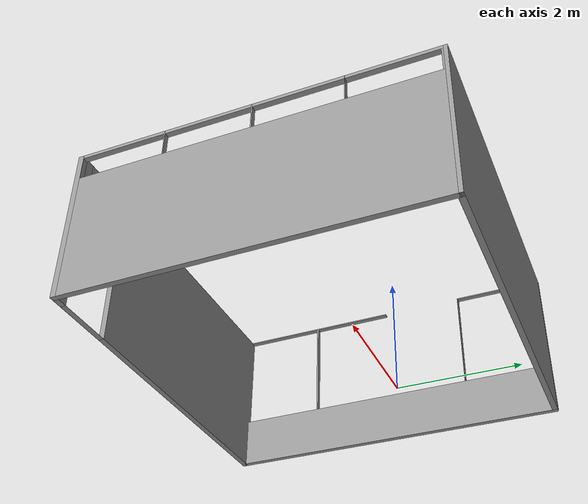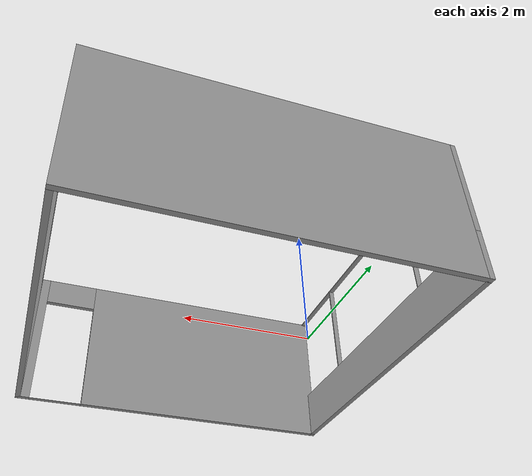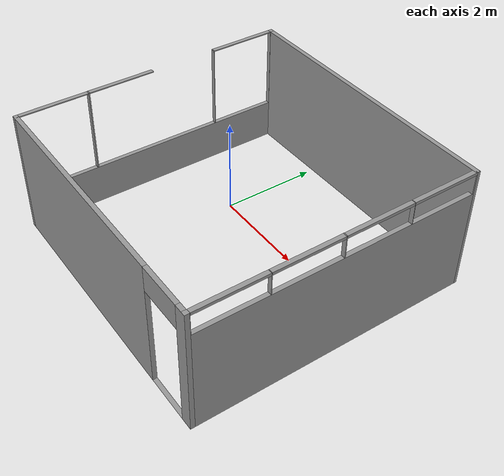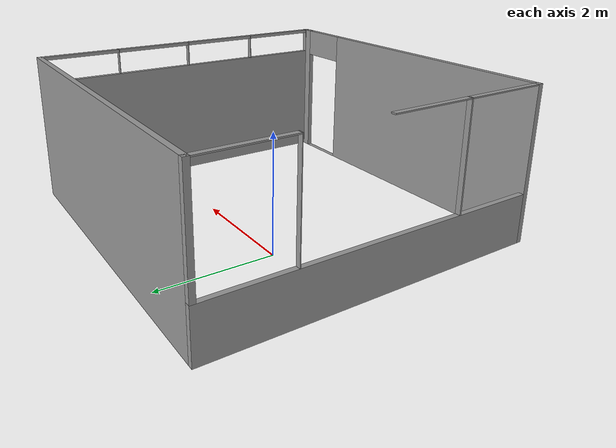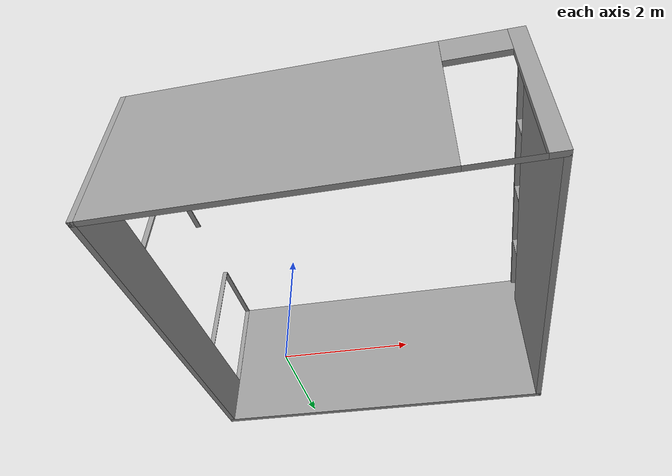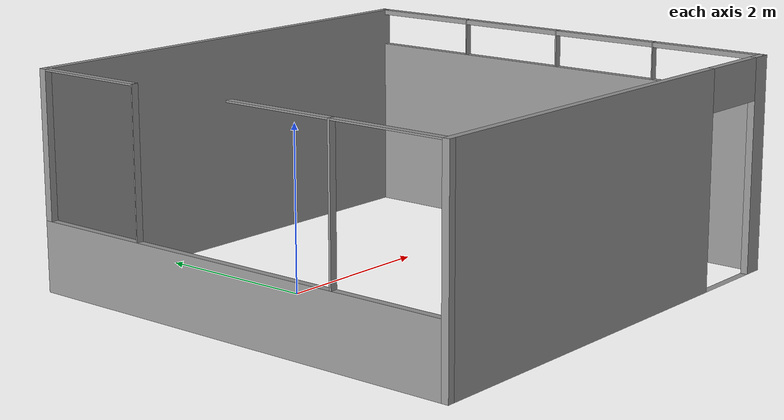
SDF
<?xml version='1.0'?>
<sdf version='1.6'>
  <model name='B75_Room'>
    <pose frame=''>1.23 -0.68 0 0 -0 0</pose>
    <link name='Wall_0'>
      <pose frame=''>-2.94 0 0 0 -0 1.5708</pose>
      <visual name='Wall_0_Visual_0'>
        <pose frame=''>-2.87782 0 1.305 0 -0 0</pose>
        <geometry>
          <box>
            <size>0.084362 0.09 2.61</size>
          </box>
        </geometry>
        <material>
          <script>
            <uri>file://media/materials/scripts/gazebo.material</uri>
            <name>Gazebo/Grey</name>
          </script>
          <ambient>1 1 1 1</ambient>
        </material>
        <meta>
          <layer>0</layer>
        </meta>
      </visual>
      <collision name='Wall_0_Collision_0'>
        <geometry>
          <box>
            <size>0.084362 0.09 2.61</size>
          </box>
        </geometry>
        <pose frame=''>-2.87782 0 1.305 0 -0 0</pose>
      </collision>
      <visual name='Wall_0_Visual_1'>
        <pose frame=''>0.042181 0 0.425 0 -0 0</pose>
        <geometry>
          <box>
            <size>5.75564 0.09 0.85</size>
          </box>
        </geometry>
        <material>
          <script>
            <uri>file://media/materials/scripts/gazebo.material</uri>
            <name>Gazebo/Grey</name>
          </script>
          <ambient>1 1 1 1</ambient>
        </material>
        <meta>
          <layer>0</layer>
        </meta>
      </visual>
      <collision name='Wall_0_Collision_1'>
        <geometry>
          <box>
            <size>5.75564 0.09 0.85</size>
          </box>
        </geometry>
        <pose frame=''>0.042181 0 0.425 0 -0 0</pose>
      </collision>
      <visual name='Wall_0_Visual_2'>
        <pose frame=''>-1.41237 0 1.73 0 -0 0</pose>
        <geometry>
          <box>
            <size>0.026548 0.09 1.76</size>
          </box>
        </geometry>
        <material>
          <script>
            <uri>file://media/materials/scripts/gazebo.material</uri>
            <name>Gazebo/Grey</name>
          </script>
          <ambient>1 1 1 1</ambient>
        </material>
        <meta>
          <layer>0</layer>
        </meta>
      </visual>
      <collision name='Wall_0_Collision_2'>
        <geometry>
          <box>
            <size>0.026548 0.09 1.76</size>
          </box>
        </geometry>
        <pose frame=''>-1.41237 0 1.73 0 -0 0</pose>
      </collision>
      <visual name='Wall_0_Visual_3'>
        <pose frame=''>1.41154 0 1.73 0 -0 0</pose>
        <geometry>
          <box>
            <size>0.012383 0.09 1.76</size>
          </box>
        </geometry>
        <material>
          <script>
            <uri>file://media/materials/scripts/gazebo.material</uri>
            <name>Gazebo/Grey</name>
          </script>
          <ambient>1 1 1 1</ambient>
        </material>
        <meta>
          <layer>0</layer>
        </meta>
      </visual>
      <collision name='Wall_0_Collision_3'>
        <geometry>
          <box>
            <size>0.012383 0.09 1.76</size>
          </box>
        </geometry>
        <pose frame=''>1.41154 0 1.73 0 -0 0</pose>
      </collision>
      <visual name='Wall_0_Visual_4'>
        <pose frame=''>2.87387 0 1.73 0 -0 0</pose>
        <geometry>
          <box>
            <size>0.092266 0.09 1.76</size>
          </box>
        </geometry>
        <material>
          <script>
            <uri>file://media/materials/scripts/gazebo.material</uri>
            <name>Gazebo/Grey</name>
          </script>
          <ambient>1 1 1 1</ambient>
        </material>
        <meta>
          <layer>0</layer>
        </meta>
      </visual>
      <collision name='Wall_0_Collision_4'>
        <geometry>
          <box>
            <size>0.092266 0.09 1.76</size>
          </box>
        </geometry>
        <pose frame=''>2.87387 0 1.73 0 -0 0</pose>
      </collision>
      <visual name='Wall_0_Visual_5'>
        <pose frame=''>-2.13064 0 2.6 0 -0 0</pose>
        <geometry>
          <box>
            <size>1.41 0.09 0.02</size>
          </box>
        </geometry>
        <material>
          <script>
            <uri>file://media/materials/scripts/gazebo.material</uri>
            <name>Gazebo/Grey</name>
          </script>
          <ambient>1 1 1 1</ambient>
        </material>
        <meta>
          <layer>0</layer>
        </meta>
      </visual>
      <collision name='Wall_0_Collision_5'>
        <geometry>
          <box>
            <size>1.41 0.09 0.02</size>
          </box>
        </geometry>
        <pose frame=''>-2.13064 0 2.6 0 -0 0</pose>
      </collision>
      <visual name='Wall_0_Visual_6'>
        <pose frame=''>-0.701869 0 2.6 0 -0 0</pose>
        <geometry>
          <box>
            <size>1.39444 0.09 0.02</size>
          </box>
        </geometry>
        <material>
          <script>
            <uri>file://media/materials/scripts/gazebo.material</uri>
            <name>Gazebo/Grey</name>
          </script>
          <ambient>1 1 1 1</ambient>
        </material>
        <meta>
          <layer>0</layer>
        </meta>
      </visual>
      <collision name='Wall_0_Collision_6'>
        <geometry>
          <box>
            <size>1.39444 0.09 0.02</size>
          </box>
        </geometry>
        <pose frame=''>-0.701869 0 2.6 0 -0 0</pose>
      </collision>
      <visual name='Wall_0_Visual_7'>
        <pose frame=''>2.12273 0 2.6 0 -0 0</pose>
        <geometry>
          <box>
            <size>1.41 0.09 0.02</size>
          </box>
        </geometry>
        <material>
          <script>
            <uri>file://media/materials/scripts/gazebo.material</uri>
            <name>Gazebo/Grey</name>
          </script>
          <ambient>1 1 1 1</ambient>
        </material>
        <meta>
          <layer>0</layer>
        </meta>
      </visual>
      <collision name='Wall_0_Collision_7'>
        <geometry>
          <box>
            <size>1.41 0.09 0.02</size>
          </box>
        </geometry>
        <pose frame=''>2.12273 0 2.6 0 -0 0</pose>
      </collision>
    </link>
    <link name='Wall_2'>
      <collision name='Wall_2_Collision'>
        <geometry>
          <box>
            <size>5.97 0.09 2.61</size>
          </box>
        </geometry>
        <pose frame=''>0 0 1.305 0 -0 0</pose>
      </collision>
      <visual name='Wall_2_Visual'>
        <pose frame=''>0 0 1.305 0 -0 0</pose>
        <geometry>
          <box>
            <size>5.97 0.09 2.61</size>
          </box>
        </geometry>
        <material>
          <script>
            <uri>file://media/materials/scripts/gazebo.material</uri>
            <name>Gazebo/Grey</name>
          </script>
          <ambient>1 1 1 1</ambient>
        </material>
        <meta>
          <layer>0</layer>
        </meta>
      </visual>
      <pose frame=''>-0 2.875 0 0 -0 0</pose>
    </link>
    <link name='Wall_4'>
      <pose frame=''>2.94 0 0 0 -0 -1.5708</pose>
      <visual name='Wall_4_Visual_0'>
        <pose frame=''>-2.88914 0 1.305 0 -0 0</pose>
        <geometry>
          <box>
            <size>0.061715 0.09 2.61</size>
          </box>
        </geometry>
        <material>
          <script>
            <uri>file://media/materials/scripts/gazebo.material</uri>
            <name>Gazebo/Grey</name>
          </script>
          <ambient>1 1 1 1</ambient>
        </material>
        <meta>
          <layer>0</layer>
        </meta>
      </visual>
      <collision name='Wall_4_Collision_0'>
        <geometry>
          <box>
            <size>0.061715 0.09 2.61</size>
          </box>
        </geometry>
        <pose frame=''>-2.88914 0 1.305 0 -0 0</pose>
      </collision>
      <visual name='Wall_4_Visual_1'>
        <pose frame=''>0.030858 0 1.075 0 -0 0</pose>
        <geometry>
          <box>
            <size>5.77829 0.09 2.15</size>
          </box>
        </geometry>
        <material>
          <script>
            <uri>file://media/materials/scripts/gazebo.material</uri>
            <name>Gazebo/Grey</name>
          </script>
          <ambient>1 1 1 1</ambient>
        </material>
        <meta>
          <layer>0</layer>
        </meta>
      </visual>
      <collision name='Wall_4_Collision_1'>
        <geometry>
          <box>
            <size>5.77829 0.09 2.15</size>
          </box>
        </geometry>
        <pose frame=''>0.030858 0 1.075 0 -0 0</pose>
      </collision>
      <visual name='Wall_4_Visual_2'>
        <pose frame=''>-1.44317 0 2.38 0 -0 0</pose>
        <geometry>
          <box>
            <size>0.010235 0.09 0.46</size>
          </box>
        </geometry>
        <material>
          <script>
            <uri>file://media/materials/scripts/gazebo.material</uri>
            <name>Gazebo/Grey</name>
          </script>
          <ambient>1 1 1 1</ambient>
        </material>
        <meta>
          <layer>0</layer>
        </meta>
      </visual>
      <collision name='Wall_4_Collision_2'>
        <geometry>
          <box>
            <size>0.010235 0.09 0.46</size>
          </box>
        </geometry>
        <pose frame=''>-1.44317 0 2.38 0 -0 0</pose>
      </collision>
      <visual name='Wall_4_Visual_3'>
        <pose frame=''>-0.018549 0 2.38 0 -0 0</pose>
        <geometry>
          <box>
            <size>0.019002 0.09 0.46</size>
          </box>
        </geometry>
        <material>
          <script>
            <uri>file://media/materials/scripts/gazebo.material</uri>
            <name>Gazebo/Grey</name>
          </script>
          <ambient>1 1 1 1</ambient>
        </material>
        <meta>
          <layer>0</layer>
        </meta>
      </visual>
      <collision name='Wall_4_Collision_3'>
        <geometry>
          <box>
            <size>0.019002 0.09 0.46</size>
          </box>
        </geometry>
        <pose frame=''>-0.018549 0 2.38 0 -0 0</pose>
      </collision>
      <visual name='Wall_4_Visual_4'>
        <pose frame=''>1.40747 0 2.38 0 -0 0</pose>
        <geometry>
          <box>
            <size>0.013027 0.09 0.46</size>
          </box>
        </geometry>
        <material>
          <script>
            <uri>file://media/materials/scripts/gazebo.material</uri>
            <name>Gazebo/Grey</name>
          </script>
          <ambient>1 1 1 1</ambient>
        </material>
        <meta>
          <layer>0</layer>
        </meta>
      </visual>
      <collision name='Wall_4_Collision_4'>
        <geometry>
          <box>
            <size>0.013027 0.09 0.46</size>
          </box>
        </geometry>
        <pose frame=''>1.40747 0 2.38 0 -0 0</pose>
      </collision>
      <visual name='Wall_4_Visual_5'>
        <pose frame=''>2.87199 0 2.38 0 -0 0</pose>
        <geometry>
          <box>
            <size>0.096021 0.09 0.46</size>
          </box>
        </geometry>
        <material>
          <script>
            <uri>file://media/materials/scripts/gazebo.material</uri>
            <name>Gazebo/Grey</name>
          </script>
          <ambient>1 1 1 1</ambient>
        </material>
        <meta>
          <layer>0</layer>
        </meta>
      </visual>
      <collision name='Wall_4_Collision_5'>
        <geometry>
          <box>
            <size>0.096021 0.09 0.46</size>
          </box>
        </geometry>
        <pose frame=''>2.87199 0 2.38 0 -0 0</pose>
      </collision>
      <visual name='Wall_4_Visual_6'>
        <pose frame=''>-2.15328 0 2.58 0 -0 0</pose>
        <geometry>
          <box>
            <size>1.41 0.09 0.06</size>
          </box>
        </geometry>
        <material>
          <script>
            <uri>file://media/materials/scripts/gazebo.material</uri>
            <name>Gazebo/Grey</name>
          </script>
          <ambient>1 1 1 1</ambient>
        </material>
        <meta>
          <layer>0</layer>
        </meta>
      </visual>
      <collision name='Wall_4_Collision_6'>
        <geometry>
          <box>
            <size>1.41 0.09 0.06</size>
          </box>
        </geometry>
        <pose frame=''>-2.15328 0 2.58 0 -0 0</pose>
      </collision>
      <visual name='Wall_4_Visual_7'>
        <pose frame=''>-0.73305 0 2.58 0 -0 0</pose>
        <geometry>
          <box>
            <size>1.41 0.09 0.06</size>
          </box>
        </geometry>
        <material>
          <script>
            <uri>file://media/materials/scripts/gazebo.material</uri>
            <name>Gazebo/Grey</name>
          </script>
          <ambient>1 1 1 1</ambient>
        </material>
        <meta>
          <layer>0</layer>
        </meta>
      </visual>
      <collision name='Wall_4_Collision_7'>
        <geometry>
          <box>
            <size>1.41 0.09 0.06</size>
          </box>
        </geometry>
        <pose frame=''>-0.73305 0 2.58 0 -0 0</pose>
      </collision>
      <visual name='Wall_4_Visual_8'>
        <pose frame=''>0.695952 0 2.58 0 -0 0</pose>
        <geometry>
          <box>
            <size>1.41 0.09 0.06</size>
          </box>
        </geometry>
        <material>
          <script>
            <uri>file://media/materials/scripts/gazebo.material</uri>
            <name>Gazebo/Grey</name>
          </script>
          <ambient>1 1 1 1</ambient>
        </material>
        <meta>
          <layer>0</layer>
        </meta>
      </visual>
      <collision name='Wall_4_Collision_8'>
        <geometry>
          <box>
            <size>1.41 0.09 0.06</size>
          </box>
        </geometry>
        <pose frame=''>0.695952 0 2.58 0 -0 0</pose>
      </collision>
      <visual name='Wall_4_Visual_9'>
        <pose frame=''>2.11898 0 2.58 0 -0 0</pose>
        <geometry>
          <box>
            <size>1.41 0.09 0.06</size>
          </box>
        </geometry>
        <material>
          <script>
            <uri>file://media/materials/scripts/gazebo.material</uri>
            <name>Gazebo/Grey</name>
          </script>
          <ambient>1 1 1 1</ambient>
        </material>
        <meta>
          <layer>0</layer>
        </meta>
      </visual>
      <collision name='Wall_4_Collision_9'>
        <geometry>
          <box>
            <size>1.41 0.09 0.06</size>
          </box>
        </geometry>
        <pose frame=''>2.11898 0 2.58 0 -0 0</pose>
      </collision>
    </link>
    <link name='Wall_6'>
      <pose frame=''>-0 -2.875 0 0 -0 3.14159</pose>
      <visual name='Wall_6_Visual_0'>
        <pose frame=''>-2.86065 0 1.305 0 -0 0</pose>
        <geometry>
          <box>
            <size>0.248701 0.09 2.61</size>
          </box>
        </geometry>
        <material>
          <script>
            <uri>file://media/materials/scripts/gazebo.material</uri>
            <name>Gazebo/Grey</name>
          </script>
          <ambient>1 1 1 1</ambient>
        </material>
        <meta>
          <layer>0</layer>
        </meta>
      </visual>
      <collision name='Wall_6_Collision_0'>
        <geometry>
          <box>
            <size>0.248701 0.09 2.61</size>
          </box>
        </geometry>
        <pose frame=''>-2.86065 0 1.305 0 -0 0</pose>
      </collision>
      <visual name='Wall_6_Visual_1'>
        <pose frame=''>0.594351 0 1.305 0 -0 0</pose>
        <geometry>
          <box>
            <size>4.7813 0.09 2.61</size>
          </box>
        </geometry>
        <material>
          <script>
            <uri>file://media/materials/scripts/gazebo.material</uri>
            <name>Gazebo/Grey</name>
          </script>
          <ambient>1 1 1 1</ambient>
        </material>
        <meta>
          <layer>0</layer>
        </meta>
      </visual>
      <collision name='Wall_6_Collision_1'>
        <geometry>
          <box>
            <size>4.7813 0.09 2.61</size>
          </box>
        </geometry>
        <pose frame=''>0.594351 0 1.305 0 -0 0</pose>
      </collision>
      <visual name='Wall_6_Visual_2'>
        <pose frame=''>-2.2663 0 0 0 -0 0</pose>
        <geometry>
          <box>
            <size>0.94 0.09 0</size>
          </box>
        </geometry>
        <material>
          <script>
            <uri>file://media/materials/scripts/gazebo.material</uri>
            <name>Gazebo/Grey</name>
          </script>
          <ambient>1 1 1 1</ambient>
        </material>
        <meta>
          <layer>0</layer>
        </meta>
      </visual>
      <collision name='Wall_6_Collision_2'>
        <geometry>
          <box>
            <size>0.94 0.09 0</size>
          </box>
        </geometry>
        <pose frame=''>-2.2663 0 0 0 -0 0</pose>
      </collision>
      <visual name='Wall_6_Visual_3'>
        <pose frame=''>-2.2663 0 2.355 0 -0 0</pose>
        <geometry>
          <box>
            <size>0.94 0.09 0.51</size>
          </box>
        </geometry>
        <material>
          <script>
            <uri>file://media/materials/scripts/gazebo.material</uri>
            <name>Gazebo/Grey</name>
          </script>
          <ambient>1 1 1 1</ambient>
        </material>
        <meta>
          <layer>0</layer>
        </meta>
      </visual>
      <collision name='Wall_6_Collision_3'>
        <geometry>
          <box>
            <size>0.94 0.09 0.51</size>
          </box>
        </geometry>
        <pose frame=''>-2.2663 0 2.355 0 -0 0</pose>
      </collision>
    </link>
    <static>1</static>
  </model>
</sdf>
